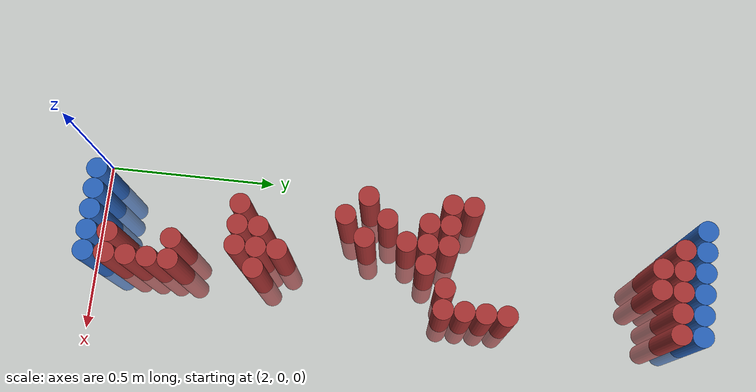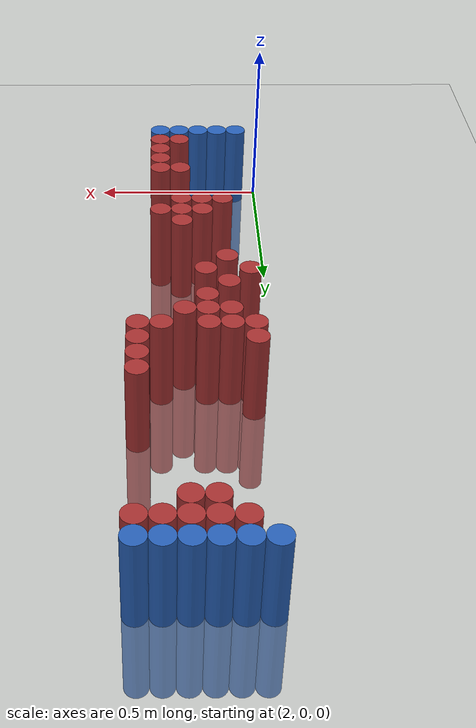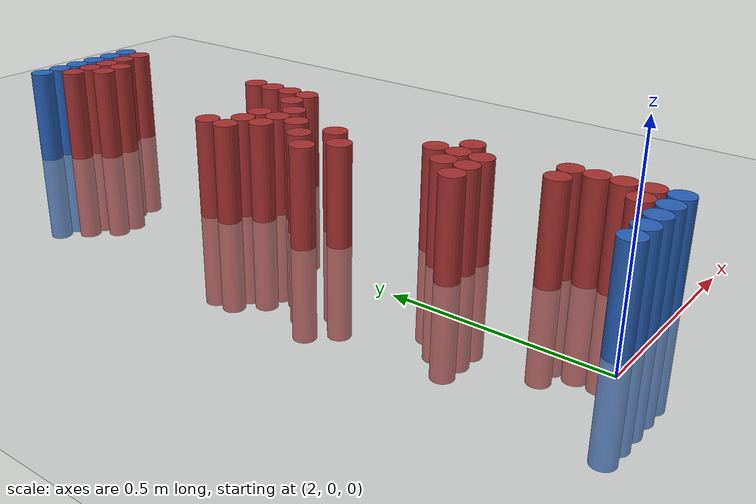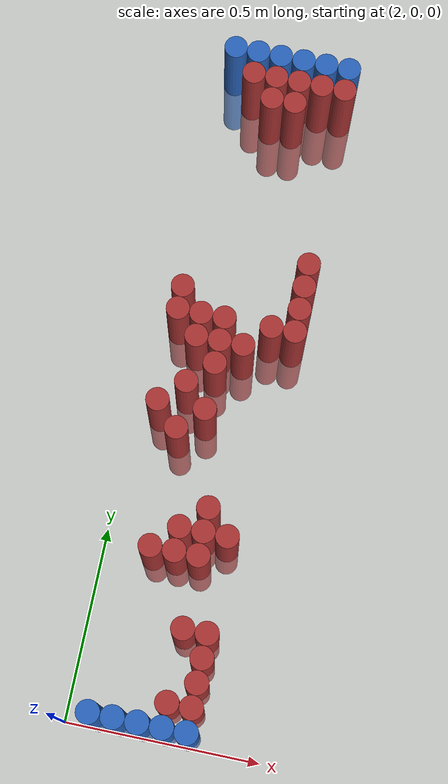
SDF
<sdf version="1.6">
 <world name="default">
  <model name="ground_plane">
   <static>1</static>
   <link name="link">
    <collision name="collision">
     <geometry><plane><normal>0 0 1</normal><size>100 100</size></plane></geometry>
     <surface><friction><ode><mu>100</mu><mu2>50</mu2></ode></friction></surface>
    </collision>
    <visual name="visual">
     <cast_shadows>0</cast_shadows>
     <geometry><plane><normal>0 0 1</normal><size>100 100</size></plane></geometry>
     <material>
      <script><uri>file://media/materials/scripts/gazebo.material</uri><name>Gazebo/Grey</name></script>
     </material>
    </visual>
   </link>
  </model>
  <model name="unit_cylinder_95">
   <static>1</static>
   <pose>2.070000 1.770000 0.000000 0.000000 0.000000 0.000000</pose>
   <link name="link">
    <inertial>
     <mass>1</mass>
     <inertia><ixx>0.145833</ixx><ixy>0</ixy><ixz>0</ixz><iyy>0.145833</iyy><iyz>0</iyz><izz>0.125</izz></inertia>
    </inertial>
    <collision name="collision">
     <geometry><cylinder><radius>0.030000</radius><length>0.5</length></cylinder></geometry>
    </collision>
    <visual name="visual">
     <geometry><cylinder><radius>0.030000</radius><length>0.5</length></cylinder></geometry>
     <material>
      <ambient>0.152000 0.379000 0.720000 1</ambient>
      <diffuse>0.152000 0.379000 0.720000 1</diffuse>
     </material>
     <material>
      <script><name>Gazebo/Grey</name><uri>file://media/materials/scripts/gazebo.material</uri></script>
     </material>
    </visual>
   </link>
  </model>
  <model name="unit_cylinder_96">
   <static>1</static>
   <pose>2.130000 1.770000 0.000000 0.000000 0.000000 0.000000</pose>
   <link name="link">
    <inertial>
     <mass>1</mass>
     <inertia><ixx>0.145833</ixx><ixy>0</ixy><ixz>0</ixz><iyy>0.145833</iyy><iyz>0</iyz><izz>0.125</izz></inertia>
    </inertial>
    <collision name="collision">
     <geometry><cylinder><radius>0.030000</radius><length>0.5</length></cylinder></geometry>
    </collision>
    <visual name="visual">
     <geometry><cylinder><radius>0.030000</radius><length>0.5</length></cylinder></geometry>
     <material>
      <ambient>0.152000 0.379000 0.720000 1</ambient>
      <diffuse>0.152000 0.379000 0.720000 1</diffuse>
     </material>
     <material>
      <script><name>Gazebo/Grey</name><uri>file://media/materials/scripts/gazebo.material</uri></script>
     </material>
    </visual>
   </link>
  </model>
  <model name="unit_cylinder_97">
   <static>1</static>
   <pose>2.190000 1.770000 0.000000 0.000000 0.000000 0.000000</pose>
   <link name="link">
    <inertial>
     <mass>1</mass>
     <inertia><ixx>0.145833</ixx><ixy>0</ixy><ixz>0</ixz><iyy>0.145833</iyy><iyz>0</iyz><izz>0.125</izz></inertia>
    </inertial>
    <collision name="collision">
     <geometry><cylinder><radius>0.030000</radius><length>0.5</length></cylinder></geometry>
    </collision>
    <visual name="visual">
     <geometry><cylinder><radius>0.030000</radius><length>0.5</length></cylinder></geometry>
     <material>
      <ambient>0.152000 0.379000 0.720000 1</ambient>
      <diffuse>0.152000 0.379000 0.720000 1</diffuse>
     </material>
     <material>
      <script><name>Gazebo/Grey</name><uri>file://media/materials/scripts/gazebo.material</uri></script>
     </material>
    </visual>
   </link>
  </model>
  <model name="unit_cylinder_98">
   <static>1</static>
   <pose>2.250000 1.770000 0.000000 0.000000 0.000000 0.000000</pose>
   <link name="link">
    <inertial>
     <mass>1</mass>
     <inertia><ixx>0.145833</ixx><ixy>0</ixy><ixz>0</ixz><iyy>0.145833</iyy><iyz>0</iyz><izz>0.125</izz></inertia>
    </inertial>
    <collision name="collision">
     <geometry><cylinder><radius>0.030000</radius><length>0.5</length></cylinder></geometry>
    </collision>
    <visual name="visual">
     <geometry><cylinder><radius>0.030000</radius><length>0.5</length></cylinder></geometry>
     <material>
      <ambient>0.152000 0.379000 0.720000 1</ambient>
      <diffuse>0.152000 0.379000 0.720000 1</diffuse>
     </material>
     <material>
      <script><name>Gazebo/Grey</name><uri>file://media/materials/scripts/gazebo.material</uri></script>
     </material>
    </visual>
   </link>
  </model>
  <model name="unit_cylinder_99">
   <static>1</static>
   <pose>2.310000 1.770000 0.000000 0.000000 0.000000 0.000000</pose>
   <link name="link">
    <inertial>
     <mass>1</mass>
     <inertia><ixx>0.145833</ixx><ixy>0</ixy><ixz>0</ixz><iyy>0.145833</iyy><iyz>0</iyz><izz>0.125</izz></inertia>
    </inertial>
    <collision name="collision">
     <geometry><cylinder><radius>0.030000</radius><length>0.5</length></cylinder></geometry>
    </collision>
    <visual name="visual">
     <geometry><cylinder><radius>0.030000</radius><length>0.5</length></cylinder></geometry>
     <material>
      <ambient>0.152000 0.379000 0.720000 1</ambient>
      <diffuse>0.152000 0.379000 0.720000 1</diffuse>
     </material>
     <material>
      <script><name>Gazebo/Grey</name><uri>file://media/materials/scripts/gazebo.material</uri></script>
     </material>
    </visual>
   </link>
  </model>
  <model name="unit_cylinder_100">
   <static>1</static>
   <pose>2.370000 1.770000 0.000000 0.000000 0.000000 0.000000</pose>
   <link name="link">
    <inertial>
     <mass>1</mass>
     <inertia><ixx>0.145833</ixx><ixy>0</ixy><ixz>0</ixz><iyy>0.145833</iyy><iyz>0</iyz><izz>0.125</izz></inertia>
    </inertial>
    <collision name="collision">
     <geometry><cylinder><radius>0.030000</radius><length>0.5</length></cylinder></geometry>
    </collision>
    <visual name="visual">
     <geometry><cylinder><radius>0.030000</radius><length>0.5</length></cylinder></geometry>
     <material>
      <ambient>0.152000 0.379000 0.720000 1</ambient>
      <diffuse>0.152000 0.379000 0.720000 1</diffuse>
     </material>
     <material>
      <script><name>Gazebo/Grey</name><uri>file://media/materials/scripts/gazebo.material</uri></script>
     </material>
    </visual>
   </link>
  </model>
  <model name="unit_cylinder_125">
   <static>1</static>
   <pose>2.130000 1.710000 0.000000 0.000000 0.000000 0.000000</pose>
   <link name="link">
    <inertial>
     <mass>1</mass>
     <inertia><ixx>0.145833</ixx><ixy>0</ixy><ixz>0</ixz><iyy>0.145833</iyy><iyz>0</iyz><izz>0.125</izz></inertia>
    </inertial>
    <collision name="collision">
     <geometry><cylinder><radius>0.030000</radius><length>0.5</length></cylinder></geometry>
    </collision>
    <visual name="visual">
     <geometry><cylinder><radius>0.030000</radius><length>0.5</length></cylinder></geometry>
     <material>
      <ambient>0.648000 0.192000 0.192000 1</ambient>
      <diffuse>0.648000 0.192000 0.192000 1</diffuse>
     </material>
     <material>
      <script><name>Gazebo/Grey</name><uri>file://media/materials/scripts/gazebo.material</uri></script>
     </material>
    </visual>
   </link>
  </model>
  <model name="unit_cylinder_126">
   <static>1</static>
   <pose>2.190000 1.710000 0.000000 0.000000 0.000000 0.000000</pose>
   <link name="link">
    <inertial>
     <mass>1</mass>
     <inertia><ixx>0.145833</ixx><ixy>0</ixy><ixz>0</ixz><iyy>0.145833</iyy><iyz>0</iyz><izz>0.125</izz></inertia>
    </inertial>
    <collision name="collision">
     <geometry><cylinder><radius>0.030000</radius><length>0.5</length></cylinder></geometry>
    </collision>
    <visual name="visual">
     <geometry><cylinder><radius>0.030000</radius><length>0.5</length></cylinder></geometry>
     <material>
      <ambient>0.648000 0.192000 0.192000 1</ambient>
      <diffuse>0.648000 0.192000 0.192000 1</diffuse>
     </material>
     <material>
      <script><name>Gazebo/Grey</name><uri>file://media/materials/scripts/gazebo.material</uri></script>
     </material>
    </visual>
   </link>
  </model>
  <model name="unit_cylinder_127">
   <static>1</static>
   <pose>2.250000 1.710000 0.000000 0.000000 0.000000 0.000000</pose>
   <link name="link">
    <inertial>
     <mass>1</mass>
     <inertia><ixx>0.145833</ixx><ixy>0</ixy><ixz>0</ixz><iyy>0.145833</iyy><iyz>0</iyz><izz>0.125</izz></inertia>
    </inertial>
    <collision name="collision">
     <geometry><cylinder><radius>0.030000</radius><length>0.5</length></cylinder></geometry>
    </collision>
    <visual name="visual">
     <geometry><cylinder><radius>0.030000</radius><length>0.5</length></cylinder></geometry>
     <material>
      <ambient>0.648000 0.192000 0.192000 1</ambient>
      <diffuse>0.648000 0.192000 0.192000 1</diffuse>
     </material>
     <material>
      <script><name>Gazebo/Grey</name><uri>file://media/materials/scripts/gazebo.material</uri></script>
     </material>
    </visual>
   </link>
  </model>
  <model name="unit_cylinder_128">
   <static>1</static>
   <pose>2.310000 1.710000 0.000000 0.000000 0.000000 0.000000</pose>
   <link name="link">
    <inertial>
     <mass>1</mass>
     <inertia><ixx>0.145833</ixx><ixy>0</ixy><ixz>0</ixz><iyy>0.145833</iyy><iyz>0</iyz><izz>0.125</izz></inertia>
    </inertial>
    <collision name="collision">
     <geometry><cylinder><radius>0.030000</radius><length>0.5</length></cylinder></geometry>
    </collision>
    <visual name="visual">
     <geometry><cylinder><radius>0.030000</radius><length>0.5</length></cylinder></geometry>
     <material>
      <ambient>0.648000 0.192000 0.192000 1</ambient>
      <diffuse>0.648000 0.192000 0.192000 1</diffuse>
     </material>
     <material>
      <script><name>Gazebo/Grey</name><uri>file://media/materials/scripts/gazebo.material</uri></script>
     </material>
    </visual>
   </link>
  </model>
  <model name="unit_cylinder_129">
   <static>1</static>
   <pose>2.370000 1.710000 0.000000 0.000000 0.000000 0.000000</pose>
   <link name="link">
    <inertial>
     <mass>1</mass>
     <inertia><ixx>0.145833</ixx><ixy>0</ixy><ixz>0</ixz><iyy>0.145833</iyy><iyz>0</iyz><izz>0.125</izz></inertia>
    </inertial>
    <collision name="collision">
     <geometry><cylinder><radius>0.030000</radius><length>0.5</length></cylinder></geometry>
    </collision>
    <visual name="visual">
     <geometry><cylinder><radius>0.030000</radius><length>0.5</length></cylinder></geometry>
     <material>
      <ambient>0.648000 0.192000 0.192000 1</ambient>
      <diffuse>0.648000 0.192000 0.192000 1</diffuse>
     </material>
     <material>
      <script><name>Gazebo/Grey</name><uri>file://media/materials/scripts/gazebo.material</uri></script>
     </material>
    </visual>
   </link>
  </model>
  <model name="unit_cylinder_147">
   <static>1</static>
   <pose>2.190000 1.650000 0.000000 0.000000 0.000000 0.000000</pose>
   <link name="link">
    <inertial>
     <mass>1</mass>
     <inertia><ixx>0.145833</ixx><ixy>0</ixy><ixz>0</ixz><iyy>0.145833</iyy><iyz>0</iyz><izz>0.125</izz></inertia>
    </inertial>
    <collision name="collision">
     <geometry><cylinder><radius>0.030000</radius><length>0.5</length></cylinder></geometry>
    </collision>
    <visual name="visual">
     <geometry><cylinder><radius>0.030000</radius><length>0.5</length></cylinder></geometry>
     <material>
      <ambient>0.648000 0.192000 0.192000 1</ambient>
      <diffuse>0.648000 0.192000 0.192000 1</diffuse>
     </material>
     <material>
      <script><name>Gazebo/Grey</name><uri>file://media/materials/scripts/gazebo.material</uri></script>
     </material>
    </visual>
   </link>
  </model>
  <model name="unit_cylinder_148">
   <static>1</static>
   <pose>2.250000 1.650000 0.000000 0.000000 0.000000 0.000000</pose>
   <link name="link">
    <inertial>
     <mass>1</mass>
     <inertia><ixx>0.145833</ixx><ixy>0</ixy><ixz>0</ixz><iyy>0.145833</iyy><iyz>0</iyz><izz>0.125</izz></inertia>
    </inertial>
    <collision name="collision">
     <geometry><cylinder><radius>0.030000</radius><length>0.5</length></cylinder></geometry>
    </collision>
    <visual name="visual">
     <geometry><cylinder><radius>0.030000</radius><length>0.5</length></cylinder></geometry>
     <material>
      <ambient>0.648000 0.192000 0.192000 1</ambient>
      <diffuse>0.648000 0.192000 0.192000 1</diffuse>
     </material>
     <material>
      <script><name>Gazebo/Grey</name><uri>file://media/materials/scripts/gazebo.material</uri></script>
     </material>
    </visual>
   </link>
  </model>
  <model name="unit_cylinder_149">
   <static>1</static>
   <pose>2.370000 1.230000 0.000000 0.000000 0.000000 0.000000</pose>
   <link name="link">
    <inertial>
     <mass>1</mass>
     <inertia><ixx>0.145833</ixx><ixy>0</ixy><ixz>0</ixz><iyy>0.145833</iyy><iyz>0</iyz><izz>0.125</izz></inertia>
    </inertial>
    <collision name="collision">
     <geometry><cylinder><radius>0.030000</radius><length>0.5</length></cylinder></geometry>
    </collision>
    <visual name="visual">
     <geometry><cylinder><radius>0.030000</radius><length>0.5</length></cylinder></geometry>
     <material>
      <ambient>0.648000 0.192000 0.192000 1</ambient>
      <diffuse>0.648000 0.192000 0.192000 1</diffuse>
     </material>
     <material>
      <script><name>Gazebo/Grey</name><uri>file://media/materials/scripts/gazebo.material</uri></script>
     </material>
    </visual>
   </link>
  </model>
  <model name="unit_cylinder_151">
   <static>1</static>
   <pose>2.370000 1.170000 0.000000 0.000000 0.000000 0.000000</pose>
   <link name="link">
    <inertial>
     <mass>1</mass>
     <inertia><ixx>0.145833</ixx><ixy>0</ixy><ixz>0</ixz><iyy>0.145833</iyy><iyz>0</iyz><izz>0.125</izz></inertia>
    </inertial>
    <collision name="collision">
     <geometry><cylinder><radius>0.030000</radius><length>0.5</length></cylinder></geometry>
    </collision>
    <visual name="visual">
     <geometry><cylinder><radius>0.030000</radius><length>0.5</length></cylinder></geometry>
     <material>
      <ambient>0.648000 0.192000 0.192000 1</ambient>
      <diffuse>0.648000 0.192000 0.192000 1</diffuse>
     </material>
     <material>
      <script><name>Gazebo/Grey</name><uri>file://media/materials/scripts/gazebo.material</uri></script>
     </material>
    </visual>
   </link>
  </model>
  <model name="unit_cylinder_158">
   <static>1</static>
   <pose>2.070000 1.110000 0.000000 0.000000 0.000000 0.000000</pose>
   <link name="link">
    <inertial>
     <mass>1</mass>
     <inertia><ixx>0.145833</ixx><ixy>0</ixy><ixz>0</ixz><iyy>0.145833</iyy><iyz>0</iyz><izz>0.125</izz></inertia>
    </inertial>
    <collision name="collision">
     <geometry><cylinder><radius>0.030000</radius><length>0.5</length></cylinder></geometry>
    </collision>
    <visual name="visual">
     <geometry><cylinder><radius>0.030000</radius><length>0.5</length></cylinder></geometry>
     <material>
      <ambient>0.648000 0.192000 0.192000 1</ambient>
      <diffuse>0.648000 0.192000 0.192000 1</diffuse>
     </material>
     <material>
      <script><name>Gazebo/Grey</name><uri>file://media/materials/scripts/gazebo.material</uri></script>
     </material>
    </visual>
   </link>
  </model>
  <model name="unit_cylinder_159">
   <static>1</static>
   <pose>2.370000 1.110000 0.000000 0.000000 0.000000 0.000000</pose>
   <link name="link">
    <inertial>
     <mass>1</mass>
     <inertia><ixx>0.145833</ixx><ixy>0</ixy><ixz>0</ixz><iyy>0.145833</iyy><iyz>0</iyz><izz>0.125</izz></inertia>
    </inertial>
    <collision name="collision">
     <geometry><cylinder><radius>0.030000</radius><length>0.5</length></cylinder></geometry>
    </collision>
    <visual name="visual">
     <geometry><cylinder><radius>0.030000</radius><length>0.5</length></cylinder></geometry>
     <material>
      <ambient>0.648000 0.192000 0.192000 1</ambient>
      <diffuse>0.648000 0.192000 0.192000 1</diffuse>
     </material>
     <material>
      <script><name>Gazebo/Grey</name><uri>file://media/materials/scripts/gazebo.material</uri></script>
     </material>
    </visual>
   </link>
  </model>
  <model name="unit_cylinder_166">
   <static>1</static>
   <pose>2.070000 1.050000 0.000000 0.000000 0.000000 0.000000</pose>
   <link name="link">
    <inertial>
     <mass>1</mass>
     <inertia><ixx>0.145833</ixx><ixy>0</ixy><ixz>0</ixz><iyy>0.145833</iyy><iyz>0</iyz><izz>0.125</izz></inertia>
    </inertial>
    <collision name="collision">
     <geometry><cylinder><radius>0.030000</radius><length>0.5</length></cylinder></geometry>
    </collision>
    <visual name="visual">
     <geometry><cylinder><radius>0.030000</radius><length>0.5</length></cylinder></geometry>
     <material>
      <ambient>0.648000 0.192000 0.192000 1</ambient>
      <diffuse>0.648000 0.192000 0.192000 1</diffuse>
     </material>
     <material>
      <script><name>Gazebo/Grey</name><uri>file://media/materials/scripts/gazebo.material</uri></script>
     </material>
    </visual>
   </link>
  </model>
  <model name="unit_cylinder_167">
   <static>1</static>
   <pose>2.130000 1.050000 0.000000 0.000000 0.000000 0.000000</pose>
   <link name="link">
    <inertial>
     <mass>1</mass>
     <inertia><ixx>0.145833</ixx><ixy>0</ixy><ixz>0</ixz><iyy>0.145833</iyy><iyz>0</iyz><izz>0.125</izz></inertia>
    </inertial>
    <collision name="collision">
     <geometry><cylinder><radius>0.030000</radius><length>0.5</length></cylinder></geometry>
    </collision>
    <visual name="visual">
     <geometry><cylinder><radius>0.030000</radius><length>0.5</length></cylinder></geometry>
     <material>
      <ambient>0.648000 0.192000 0.192000 1</ambient>
      <diffuse>0.648000 0.192000 0.192000 1</diffuse>
     </material>
     <material>
      <script><name>Gazebo/Grey</name><uri>file://media/materials/scripts/gazebo.material</uri></script>
     </material>
    </visual>
   </link>
  </model>
  <model name="unit_cylinder_168">
   <static>1</static>
   <pose>2.190000 1.050000 0.000000 0.000000 0.000000 0.000000</pose>
   <link name="link">
    <inertial>
     <mass>1</mass>
     <inertia><ixx>0.145833</ixx><ixy>0</ixy><ixz>0</ixz><iyy>0.145833</iyy><iyz>0</iyz><izz>0.125</izz></inertia>
    </inertial>
    <collision name="collision">
     <geometry><cylinder><radius>0.030000</radius><length>0.5</length></cylinder></geometry>
    </collision>
    <visual name="visual">
     <geometry><cylinder><radius>0.030000</radius><length>0.5</length></cylinder></geometry>
     <material>
      <ambient>0.648000 0.192000 0.192000 1</ambient>
      <diffuse>0.648000 0.192000 0.192000 1</diffuse>
     </material>
     <material>
      <script><name>Gazebo/Grey</name><uri>file://media/materials/scripts/gazebo.material</uri></script>
     </material>
    </visual>
   </link>
  </model>
  <model name="unit_cylinder_169">
   <static>1</static>
   <pose>2.310000 1.050000 0.000000 0.000000 0.000000 0.000000</pose>
   <link name="link">
    <inertial>
     <mass>1</mass>
     <inertia><ixx>0.145833</ixx><ixy>0</ixy><ixz>0</ixz><iyy>0.145833</iyy><iyz>0</iyz><izz>0.125</izz></inertia>
    </inertial>
    <collision name="collision">
     <geometry><cylinder><radius>0.030000</radius><length>0.5</length></cylinder></geometry>
    </collision>
    <visual name="visual">
     <geometry><cylinder><radius>0.030000</radius><length>0.5</length></cylinder></geometry>
     <material>
      <ambient>0.648000 0.192000 0.192000 1</ambient>
      <diffuse>0.648000 0.192000 0.192000 1</diffuse>
     </material>
     <material>
      <script><name>Gazebo/Grey</name><uri>file://media/materials/scripts/gazebo.material</uri></script>
     </material>
    </visual>
   </link>
  </model>
  <model name="unit_cylinder_170">
   <static>1</static>
   <pose>2.370000 1.050000 0.000000 0.000000 0.000000 0.000000</pose>
   <link name="link">
    <inertial>
     <mass>1</mass>
     <inertia><ixx>0.145833</ixx><ixy>0</ixy><ixz>0</ixz><iyy>0.145833</iyy><iyz>0</iyz><izz>0.125</izz></inertia>
    </inertial>
    <collision name="collision">
     <geometry><cylinder><radius>0.030000</radius><length>0.5</length></cylinder></geometry>
    </collision>
    <visual name="visual">
     <geometry><cylinder><radius>0.030000</radius><length>0.5</length></cylinder></geometry>
     <material>
      <ambient>0.648000 0.192000 0.192000 1</ambient>
      <diffuse>0.648000 0.192000 0.192000 1</diffuse>
     </material>
     <material>
      <script><name>Gazebo/Grey</name><uri>file://media/materials/scripts/gazebo.material</uri></script>
     </material>
    </visual>
   </link>
  </model>
  <model name="unit_cylinder_178">
   <static>1</static>
   <pose>2.130000 0.990000 0.000000 0.000000 0.000000 0.000000</pose>
   <link name="link">
    <inertial>
     <mass>1</mass>
     <inertia><ixx>0.145833</ixx><ixy>0</ixy><ixz>0</ixz><iyy>0.145833</iyy><iyz>0</iyz><izz>0.125</izz></inertia>
    </inertial>
    <collision name="collision">
     <geometry><cylinder><radius>0.030000</radius><length>0.5</length></cylinder></geometry>
    </collision>
    <visual name="visual">
     <geometry><cylinder><radius>0.030000</radius><length>0.5</length></cylinder></geometry>
     <material>
      <ambient>0.648000 0.192000 0.192000 1</ambient>
      <diffuse>0.648000 0.192000 0.192000 1</diffuse>
     </material>
     <material>
      <script><name>Gazebo/Grey</name><uri>file://media/materials/scripts/gazebo.material</uri></script>
     </material>
    </visual>
   </link>
  </model>
  <model name="unit_cylinder_179">
   <static>1</static>
   <pose>2.190000 0.990000 0.000000 0.000000 0.000000 0.000000</pose>
   <link name="link">
    <inertial>
     <mass>1</mass>
     <inertia><ixx>0.145833</ixx><ixy>0</ixy><ixz>0</ixz><iyy>0.145833</iyy><iyz>0</iyz><izz>0.125</izz></inertia>
    </inertial>
    <collision name="collision">
     <geometry><cylinder><radius>0.030000</radius><length>0.5</length></cylinder></geometry>
    </collision>
    <visual name="visual">
     <geometry><cylinder><radius>0.030000</radius><length>0.5</length></cylinder></geometry>
     <material>
      <ambient>0.648000 0.192000 0.192000 1</ambient>
      <diffuse>0.648000 0.192000 0.192000 1</diffuse>
     </material>
     <material>
      <script><name>Gazebo/Grey</name><uri>file://media/materials/scripts/gazebo.material</uri></script>
     </material>
    </visual>
   </link>
  </model>
  <model name="unit_cylinder_180">
   <static>1</static>
   <pose>2.250000 0.990000 0.000000 0.000000 0.000000 0.000000</pose>
   <link name="link">
    <inertial>
     <mass>1</mass>
     <inertia><ixx>0.145833</ixx><ixy>0</ixy><ixz>0</ixz><iyy>0.145833</iyy><iyz>0</iyz><izz>0.125</izz></inertia>
    </inertial>
    <collision name="collision">
     <geometry><cylinder><radius>0.030000</radius><length>0.5</length></cylinder></geometry>
    </collision>
    <visual name="visual">
     <geometry><cylinder><radius>0.030000</radius><length>0.5</length></cylinder></geometry>
     <material>
      <ambient>0.648000 0.192000 0.192000 1</ambient>
      <diffuse>0.648000 0.192000 0.192000 1</diffuse>
     </material>
     <material>
      <script><name>Gazebo/Grey</name><uri>file://media/materials/scripts/gazebo.material</uri></script>
     </material>
    </visual>
   </link>
  </model>
  <model name="unit_cylinder_184">
   <static>1</static>
   <pose>2.190000 0.930000 0.000000 0.000000 0.000000 0.000000</pose>
   <link name="link">
    <inertial>
     <mass>1</mass>
     <inertia><ixx>0.145833</ixx><ixy>0</ixy><ixz>0</ixz><iyy>0.145833</iyy><iyz>0</iyz><izz>0.125</izz></inertia>
    </inertial>
    <collision name="collision">
     <geometry><cylinder><radius>0.030000</radius><length>0.5</length></cylinder></geometry>
    </collision>
    <visual name="visual">
     <geometry><cylinder><radius>0.030000</radius><length>0.5</length></cylinder></geometry>
     <material>
      <ambient>0.648000 0.192000 0.192000 1</ambient>
      <diffuse>0.648000 0.192000 0.192000 1</diffuse>
     </material>
     <material>
      <script><name>Gazebo/Grey</name><uri>file://media/materials/scripts/gazebo.material</uri></script>
     </material>
    </visual>
   </link>
  </model>
  <model name="unit_cylinder_185">
   <static>1</static>
   <pose>2.130000 0.870000 0.000000 0.000000 0.000000 0.000000</pose>
   <link name="link">
    <inertial>
     <mass>1</mass>
     <inertia><ixx>0.145833</ixx><ixy>0</ixy><ixz>0</ixz><iyy>0.145833</iyy><iyz>0</iyz><izz>0.125</izz></inertia>
    </inertial>
    <collision name="collision">
     <geometry><cylinder><radius>0.030000</radius><length>0.5</length></cylinder></geometry>
    </collision>
    <visual name="visual">
     <geometry><cylinder><radius>0.030000</radius><length>0.5</length></cylinder></geometry>
     <material>
      <ambient>0.648000 0.192000 0.192000 1</ambient>
      <diffuse>0.648000 0.192000 0.192000 1</diffuse>
     </material>
     <material>
      <script><name>Gazebo/Grey</name><uri>file://media/materials/scripts/gazebo.material</uri></script>
     </material>
    </visual>
   </link>
  </model>
  <model name="unit_cylinder_186">
   <static>1</static>
   <pose>2.070000 0.810000 0.000000 0.000000 0.000000 0.000000</pose>
   <link name="link">
    <inertial>
     <mass>1</mass>
     <inertia><ixx>0.145833</ixx><ixy>0</ixy><ixz>0</ixz><iyy>0.145833</iyy><iyz>0</iyz><izz>0.125</izz></inertia>
    </inertial>
    <collision name="collision">
     <geometry><cylinder><radius>0.030000</radius><length>0.5</length></cylinder></geometry>
    </collision>
    <visual name="visual">
     <geometry><cylinder><radius>0.030000</radius><length>0.5</length></cylinder></geometry>
     <material>
      <ambient>0.648000 0.192000 0.192000 1</ambient>
      <diffuse>0.648000 0.192000 0.192000 1</diffuse>
     </material>
     <material>
      <script><name>Gazebo/Grey</name><uri>file://media/materials/scripts/gazebo.material</uri></script>
     </material>
    </visual>
   </link>
  </model>
  <model name="unit_cylinder_187">
   <static>1</static>
   <pose>2.190000 0.810000 0.000000 0.000000 0.000000 0.000000</pose>
   <link name="link">
    <inertial>
     <mass>1</mass>
     <inertia><ixx>0.145833</ixx><ixy>0</ixy><ixz>0</ixz><iyy>0.145833</iyy><iyz>0</iyz><izz>0.125</izz></inertia>
    </inertial>
    <collision name="collision">
     <geometry><cylinder><radius>0.030000</radius><length>0.5</length></cylinder></geometry>
    </collision>
    <visual name="visual">
     <geometry><cylinder><radius>0.030000</radius><length>0.5</length></cylinder></geometry>
     <material>
      <ambient>0.648000 0.192000 0.192000 1</ambient>
      <diffuse>0.648000 0.192000 0.192000 1</diffuse>
     </material>
     <material>
      <script><name>Gazebo/Grey</name><uri>file://media/materials/scripts/gazebo.material</uri></script>
     </material>
    </visual>
   </link>
  </model>
  <model name="unit_cylinder_188">
   <static>1</static>
   <pose>2.130000 0.750000 0.000000 0.000000 0.000000 0.000000</pose>
   <link name="link">
    <inertial>
     <mass>1</mass>
     <inertia><ixx>0.145833</ixx><ixy>0</ixy><ixz>0</ixz><iyy>0.145833</iyy><iyz>0</iyz><izz>0.125</izz></inertia>
    </inertial>
    <collision name="collision">
     <geometry><cylinder><radius>0.030000</radius><length>0.5</length></cylinder></geometry>
    </collision>
    <visual name="visual">
     <geometry><cylinder><radius>0.030000</radius><length>0.5</length></cylinder></geometry>
     <material>
      <ambient>0.648000 0.192000 0.192000 1</ambient>
      <diffuse>0.648000 0.192000 0.192000 1</diffuse>
     </material>
     <material>
      <script><name>Gazebo/Grey</name><uri>file://media/materials/scripts/gazebo.material</uri></script>
     </material>
    </visual>
   </link>
  </model>
  <model name="unit_cylinder_198">
   <static>1</static>
   <pose>2.250000 0.570000 0.000000 0.000000 0.000000 0.000000</pose>
   <link name="link">
    <inertial>
     <mass>1</mass>
     <inertia><ixx>0.145833</ixx><ixy>0</ixy><ixz>0</ixz><iyy>0.145833</iyy><iyz>0</iyz><izz>0.125</izz></inertia>
    </inertial>
    <collision name="collision">
     <geometry><cylinder><radius>0.030000</radius><length>0.5</length></cylinder></geometry>
    </collision>
    <visual name="visual">
     <geometry><cylinder><radius>0.030000</radius><length>0.5</length></cylinder></geometry>
     <material>
      <ambient>0.648000 0.192000 0.192000 1</ambient>
      <diffuse>0.648000 0.192000 0.192000 1</diffuse>
     </material>
     <material>
      <script><name>Gazebo/Grey</name><uri>file://media/materials/scripts/gazebo.material</uri></script>
     </material>
    </visual>
   </link>
  </model>
  <model name="unit_cylinder_202">
   <static>1</static>
   <pose>2.190000 0.510000 0.000000 0.000000 0.000000 0.000000</pose>
   <link name="link">
    <inertial>
     <mass>1</mass>
     <inertia><ixx>0.145833</ixx><ixy>0</ixy><ixz>0</ixz><iyy>0.145833</iyy><iyz>0</iyz><izz>0.125</izz></inertia>
    </inertial>
    <collision name="collision">
     <geometry><cylinder><radius>0.030000</radius><length>0.5</length></cylinder></geometry>
    </collision>
    <visual name="visual">
     <geometry><cylinder><radius>0.030000</radius><length>0.5</length></cylinder></geometry>
     <material>
      <ambient>0.648000 0.192000 0.192000 1</ambient>
      <diffuse>0.648000 0.192000 0.192000 1</diffuse>
     </material>
     <material>
      <script><name>Gazebo/Grey</name><uri>file://media/materials/scripts/gazebo.material</uri></script>
     </material>
    </visual>
   </link>
  </model>
  <model name="unit_cylinder_203">
   <static>1</static>
   <pose>2.250000 0.510000 0.000000 0.000000 0.000000 0.000000</pose>
   <link name="link">
    <inertial>
     <mass>1</mass>
     <inertia><ixx>0.145833</ixx><ixy>0</ixy><ixz>0</ixz><iyy>0.145833</iyy><iyz>0</iyz><izz>0.125</izz></inertia>
    </inertial>
    <collision name="collision">
     <geometry><cylinder><radius>0.030000</radius><length>0.5</length></cylinder></geometry>
    </collision>
    <visual name="visual">
     <geometry><cylinder><radius>0.030000</radius><length>0.5</length></cylinder></geometry>
     <material>
      <ambient>0.648000 0.192000 0.192000 1</ambient>
      <diffuse>0.648000 0.192000 0.192000 1</diffuse>
     </material>
     <material>
      <script><name>Gazebo/Grey</name><uri>file://media/materials/scripts/gazebo.material</uri></script>
     </material>
    </visual>
   </link>
  </model>
  <model name="unit_cylinder_204">
   <static>1</static>
   <pose>2.310000 0.510000 0.000000 0.000000 0.000000 0.000000</pose>
   <link name="link">
    <inertial>
     <mass>1</mass>
     <inertia><ixx>0.145833</ixx><ixy>0</ixy><ixz>0</ixz><iyy>0.145833</iyy><iyz>0</iyz><izz>0.125</izz></inertia>
    </inertial>
    <collision name="collision">
     <geometry><cylinder><radius>0.030000</radius><length>0.5</length></cylinder></geometry>
    </collision>
    <visual name="visual">
     <geometry><cylinder><radius>0.030000</radius><length>0.5</length></cylinder></geometry>
     <material>
      <ambient>0.648000 0.192000 0.192000 1</ambient>
      <diffuse>0.648000 0.192000 0.192000 1</diffuse>
     </material>
     <material>
      <script><name>Gazebo/Grey</name><uri>file://media/materials/scripts/gazebo.material</uri></script>
     </material>
    </visual>
   </link>
  </model>
  <model name="unit_cylinder_208">
   <static>1</static>
   <pose>2.130000 0.450000 0.000000 0.000000 0.000000 0.000000</pose>
   <link name="link">
    <inertial>
     <mass>1</mass>
     <inertia><ixx>0.145833</ixx><ixy>0</ixy><ixz>0</ixz><iyy>0.145833</iyy><iyz>0</iyz><izz>0.125</izz></inertia>
    </inertial>
    <collision name="collision">
     <geometry><cylinder><radius>0.030000</radius><length>0.5</length></cylinder></geometry>
    </collision>
    <visual name="visual">
     <geometry><cylinder><radius>0.030000</radius><length>0.5</length></cylinder></geometry>
     <material>
      <ambient>0.648000 0.192000 0.192000 1</ambient>
      <diffuse>0.648000 0.192000 0.192000 1</diffuse>
     </material>
     <material>
      <script><name>Gazebo/Grey</name><uri>file://media/materials/scripts/gazebo.material</uri></script>
     </material>
    </visual>
   </link>
  </model>
  <model name="unit_cylinder_209">
   <static>1</static>
   <pose>2.190000 0.450000 0.000000 0.000000 0.000000 0.000000</pose>
   <link name="link">
    <inertial>
     <mass>1</mass>
     <inertia><ixx>0.145833</ixx><ixy>0</ixy><ixz>0</ixz><iyy>0.145833</iyy><iyz>0</iyz><izz>0.125</izz></inertia>
    </inertial>
    <collision name="collision">
     <geometry><cylinder><radius>0.030000</radius><length>0.5</length></cylinder></geometry>
    </collision>
    <visual name="visual">
     <geometry><cylinder><radius>0.030000</radius><length>0.5</length></cylinder></geometry>
     <material>
      <ambient>0.648000 0.192000 0.192000 1</ambient>
      <diffuse>0.648000 0.192000 0.192000 1</diffuse>
     </material>
     <material>
      <script><name>Gazebo/Grey</name><uri>file://media/materials/scripts/gazebo.material</uri></script>
     </material>
    </visual>
   </link>
  </model>
  <model name="unit_cylinder_210">
   <static>1</static>
   <pose>2.250000 0.450000 0.000000 0.000000 0.000000 0.000000</pose>
   <link name="link">
    <inertial>
     <mass>1</mass>
     <inertia><ixx>0.145833</ixx><ixy>0</ixy><ixz>0</ixz><iyy>0.145833</iyy><iyz>0</iyz><izz>0.125</izz></inertia>
    </inertial>
    <collision name="collision">
     <geometry><cylinder><radius>0.030000</radius><length>0.5</length></cylinder></geometry>
    </collision>
    <visual name="visual">
     <geometry><cylinder><radius>0.030000</radius><length>0.5</length></cylinder></geometry>
     <material>
      <ambient>0.648000 0.192000 0.192000 1</ambient>
      <diffuse>0.648000 0.192000 0.192000 1</diffuse>
     </material>
     <material>
      <script><name>Gazebo/Grey</name><uri>file://media/materials/scripts/gazebo.material</uri></script>
     </material>
    </visual>
   </link>
  </model>
  <model name="unit_cylinder_225">
   <static>1</static>
   <pose>2.250000 0.270000 0.000000 0.000000 0.000000 0.000000</pose>
   <link name="link">
    <inertial>
     <mass>1</mass>
     <inertia><ixx>0.145833</ixx><ixy>0</ixy><ixz>0</ixz><iyy>0.145833</iyy><iyz>0</iyz><izz>0.125</izz></inertia>
    </inertial>
    <collision name="collision">
     <geometry><cylinder><radius>0.030000</radius><length>0.5</length></cylinder></geometry>
    </collision>
    <visual name="visual">
     <geometry><cylinder><radius>0.030000</radius><length>0.5</length></cylinder></geometry>
     <material>
      <ambient>0.648000 0.192000 0.192000 1</ambient>
      <diffuse>0.648000 0.192000 0.192000 1</diffuse>
     </material>
     <material>
      <script><name>Gazebo/Grey</name><uri>file://media/materials/scripts/gazebo.material</uri></script>
     </material>
    </visual>
   </link>
  </model>
  <model name="unit_cylinder_226">
   <static>1</static>
   <pose>2.310000 0.270000 0.000000 0.000000 0.000000 0.000000</pose>
   <link name="link">
    <inertial>
     <mass>1</mass>
     <inertia><ixx>0.145833</ixx><ixy>0</ixy><ixz>0</ixz><iyy>0.145833</iyy><iyz>0</iyz><izz>0.125</izz></inertia>
    </inertial>
    <collision name="collision">
     <geometry><cylinder><radius>0.030000</radius><length>0.5</length></cylinder></geometry>
    </collision>
    <visual name="visual">
     <geometry><cylinder><radius>0.030000</radius><length>0.5</length></cylinder></geometry>
     <material>
      <ambient>0.648000 0.192000 0.192000 1</ambient>
      <diffuse>0.648000 0.192000 0.192000 1</diffuse>
     </material>
     <material>
      <script><name>Gazebo/Grey</name><uri>file://media/materials/scripts/gazebo.material</uri></script>
     </material>
    </visual>
   </link>
  </model>
  <model name="unit_cylinder_227">
   <static>1</static>
   <pose>2.310000 0.210000 0.000000 0.000000 0.000000 0.000000</pose>
   <link name="link">
    <inertial>
     <mass>1</mass>
     <inertia><ixx>0.145833</ixx><ixy>0</ixy><ixz>0</ixz><iyy>0.145833</iyy><iyz>0</iyz><izz>0.125</izz></inertia>
    </inertial>
    <collision name="collision">
     <geometry><cylinder><radius>0.030000</radius><length>0.5</length></cylinder></geometry>
    </collision>
    <visual name="visual">
     <geometry><cylinder><radius>0.030000</radius><length>0.5</length></cylinder></geometry>
     <material>
      <ambient>0.648000 0.192000 0.192000 1</ambient>
      <diffuse>0.648000 0.192000 0.192000 1</diffuse>
     </material>
     <material>
      <script><name>Gazebo/Grey</name><uri>file://media/materials/scripts/gazebo.material</uri></script>
     </material>
    </visual>
   </link>
  </model>
  <model name="unit_cylinder_232">
   <static>1</static>
   <pose>2.310000 0.150000 0.000000 0.000000 0.000000 0.000000</pose>
   <link name="link">
    <inertial>
     <mass>1</mass>
     <inertia><ixx>0.145833</ixx><ixy>0</ixy><ixz>0</ixz><iyy>0.145833</iyy><iyz>0</iyz><izz>0.125</izz></inertia>
    </inertial>
    <collision name="collision">
     <geometry><cylinder><radius>0.030000</radius><length>0.5</length></cylinder></geometry>
    </collision>
    <visual name="visual">
     <geometry><cylinder><radius>0.030000</radius><length>0.5</length></cylinder></geometry>
     <material>
      <ambient>0.648000 0.192000 0.192000 1</ambient>
      <diffuse>0.648000 0.192000 0.192000 1</diffuse>
     </material>
     <material>
      <script><name>Gazebo/Grey</name><uri>file://media/materials/scripts/gazebo.material</uri></script>
     </material>
    </visual>
   </link>
  </model>
  <model name="unit_cylinder_238">
   <static>1</static>
   <pose>2.250000 0.090000 0.000000 0.000000 0.000000 0.000000</pose>
   <link name="link">
    <inertial>
     <mass>1</mass>
     <inertia><ixx>0.145833</ixx><ixy>0</ixy><ixz>0</ixz><iyy>0.145833</iyy><iyz>0</iyz><izz>0.125</izz></inertia>
    </inertial>
    <collision name="collision">
     <geometry><cylinder><radius>0.030000</radius><length>0.5</length></cylinder></geometry>
    </collision>
    <visual name="visual">
     <geometry><cylinder><radius>0.030000</radius><length>0.5</length></cylinder></geometry>
     <material>
      <ambient>0.648000 0.192000 0.192000 1</ambient>
      <diffuse>0.648000 0.192000 0.192000 1</diffuse>
     </material>
     <material>
      <script><name>Gazebo/Grey</name><uri>file://media/materials/scripts/gazebo.material</uri></script>
     </material>
    </visual>
   </link>
  </model>
  <model name="unit_cylinder_239">
   <static>1</static>
   <pose>2.310000 0.090000 0.000000 0.000000 0.000000 0.000000</pose>
   <link name="link">
    <inertial>
     <mass>1</mass>
     <inertia><ixx>0.145833</ixx><ixy>0</ixy><ixz>0</ixz><iyy>0.145833</iyy><iyz>0</iyz><izz>0.125</izz></inertia>
    </inertial>
    <collision name="collision">
     <geometry><cylinder><radius>0.030000</radius><length>0.5</length></cylinder></geometry>
    </collision>
    <visual name="visual">
     <geometry><cylinder><radius>0.030000</radius><length>0.5</length></cylinder></geometry>
     <material>
      <ambient>0.648000 0.192000 0.192000 1</ambient>
      <diffuse>0.648000 0.192000 0.192000 1</diffuse>
     </material>
     <material>
      <script><name>Gazebo/Grey</name><uri>file://media/materials/scripts/gazebo.material</uri></script>
     </material>
    </visual>
   </link>
  </model>
  <model name="unit_cylinder_255">
   <static>1</static>
   <pose>2.070000 0.030000 0.000000 0.000000 0.000000 0.000000</pose>
   <link name="link">
    <inertial>
     <mass>1</mass>
     <inertia><ixx>0.145833</ixx><ixy>0</ixy><ixz>0</ixz><iyy>0.145833</iyy><iyz>0</iyz><izz>0.125</izz></inertia>
    </inertial>
    <collision name="collision">
     <geometry><cylinder><radius>0.030000</radius><length>0.5</length></cylinder></geometry>
    </collision>
    <visual name="visual">
     <geometry><cylinder><radius>0.030000</radius><length>0.5</length></cylinder></geometry>
     <material>
      <ambient>0.152000 0.379000 0.720000 1</ambient>
      <diffuse>0.152000 0.379000 0.720000 1</diffuse>
     </material>
     <material>
      <script><name>Gazebo/Grey</name><uri>file://media/materials/scripts/gazebo.material</uri></script>
     </material>
    </visual>
   </link>
  </model>
  <model name="unit_cylinder_256">
   <static>1</static>
   <pose>2.130000 0.030000 0.000000 0.000000 0.000000 0.000000</pose>
   <link name="link">
    <inertial>
     <mass>1</mass>
     <inertia><ixx>0.145833</ixx><ixy>0</ixy><ixz>0</ixz><iyy>0.145833</iyy><iyz>0</iyz><izz>0.125</izz></inertia>
    </inertial>
    <collision name="collision">
     <geometry><cylinder><radius>0.030000</radius><length>0.5</length></cylinder></geometry>
    </collision>
    <visual name="visual">
     <geometry><cylinder><radius>0.030000</radius><length>0.5</length></cylinder></geometry>
     <material>
      <ambient>0.152000 0.379000 0.720000 1</ambient>
      <diffuse>0.152000 0.379000 0.720000 1</diffuse>
     </material>
     <material>
      <script><name>Gazebo/Grey</name><uri>file://media/materials/scripts/gazebo.material</uri></script>
     </material>
    </visual>
   </link>
  </model>
  <model name="unit_cylinder_257">
   <static>1</static>
   <pose>2.190000 0.030000 0.000000 0.000000 0.000000 0.000000</pose>
   <link name="link">
    <inertial>
     <mass>1</mass>
     <inertia><ixx>0.145833</ixx><ixy>0</ixy><ixz>0</ixz><iyy>0.145833</iyy><iyz>0</iyz><izz>0.125</izz></inertia>
    </inertial>
    <collision name="collision">
     <geometry><cylinder><radius>0.030000</radius><length>0.5</length></cylinder></geometry>
    </collision>
    <visual name="visual">
     <geometry><cylinder><radius>0.030000</radius><length>0.5</length></cylinder></geometry>
     <material>
      <ambient>0.152000 0.379000 0.720000 1</ambient>
      <diffuse>0.152000 0.379000 0.720000 1</diffuse>
     </material>
     <material>
      <script><name>Gazebo/Grey</name><uri>file://media/materials/scripts/gazebo.material</uri></script>
     </material>
    </visual>
   </link>
  </model>
  <model name="unit_cylinder_258">
   <static>1</static>
   <pose>2.250000 0.030000 0.000000 0.000000 0.000000 0.000000</pose>
   <link name="link">
    <inertial>
     <mass>1</mass>
     <inertia><ixx>0.145833</ixx><ixy>0</ixy><ixz>0</ixz><iyy>0.145833</iyy><iyz>0</iyz><izz>0.125</izz></inertia>
    </inertial>
    <collision name="collision">
     <geometry><cylinder><radius>0.030000</radius><length>0.5</length></cylinder></geometry>
    </collision>
    <visual name="visual">
     <geometry><cylinder><radius>0.030000</radius><length>0.5</length></cylinder></geometry>
     <material>
      <ambient>0.152000 0.379000 0.720000 1</ambient>
      <diffuse>0.152000 0.379000 0.720000 1</diffuse>
     </material>
     <material>
      <script><name>Gazebo/Grey</name><uri>file://media/materials/scripts/gazebo.material</uri></script>
     </material>
    </visual>
   </link>
  </model>
  <model name="unit_cylinder_259">
   <static>1</static>
   <pose>2.310000 0.030000 0.000000 0.000000 0.000000 0.000000</pose>
   <link name="link">
    <inertial>
     <mass>1</mass>
     <inertia><ixx>0.145833</ixx><ixy>0</ixy><ixz>0</ixz><iyy>0.145833</iyy><iyz>0</iyz><izz>0.125</izz></inertia>
    </inertial>
    <collision name="collision">
     <geometry><cylinder><radius>0.030000</radius><length>0.5</length></cylinder></geometry>
    </collision>
    <visual name="visual">
     <geometry><cylinder><radius>0.030000</radius><length>0.5</length></cylinder></geometry>
     <material>
      <ambient>0.152000 0.379000 0.720000 1</ambient>
      <diffuse>0.152000 0.379000 0.720000 1</diffuse>
     </material>
     <material>
      <script><name>Gazebo/Grey</name><uri>file://media/materials/scripts/gazebo.material</uri></script>
     </material>
    </visual>
   </link>
  </model>
 </world>
</sdf>
